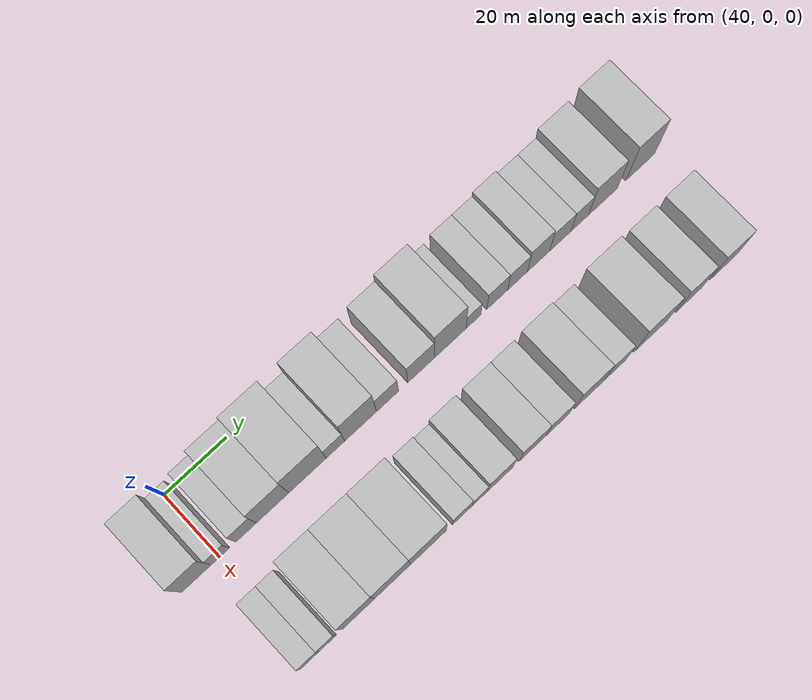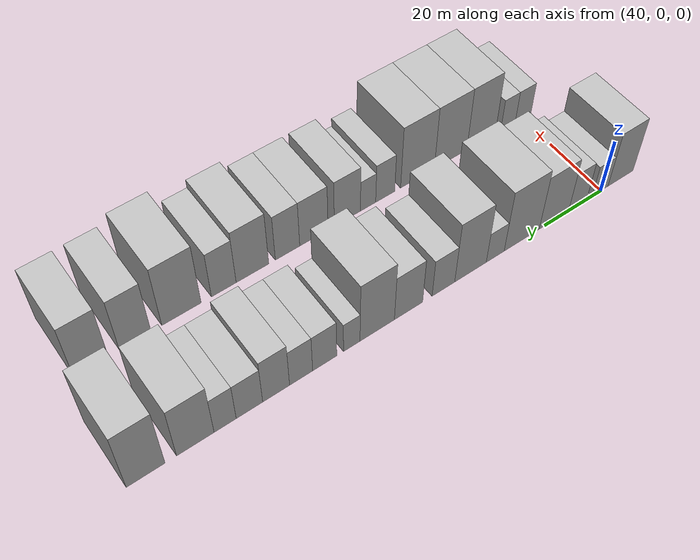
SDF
<sdf version="1.6">
 <world name="default">
  <model name="building_33">
   <static>1</static>
   <pose>50.0000 -7.2381 0 0.000000 0.000000 0.000000</pose>
   <link name="link">
    <pose>0 0 10.50 0 0 0</pose>
    <collision name="collision"><geometry><box><size>20.0000 9.2446 21.0000</size></box></geometry></collision>
    <visual name="visual">
     <cast_shadows>0</cast_shadows>
     <geometry><box><size>20.0000 9.2446 21.0000</size></box></geometry>
     <material>
      <script>
       <uri>model://HANNAS_wall/materials/scripts</uri>
       <uri>model://HANNAS_wall/materials/textures</uri>
       <name>vrc/HANNAS_wall</name>
      </script>
     </material>
    </visual>
   </link>
  </model>
  <model name="building_34">
   <static>1</static>
   <pose>50.0000 0.2510 0 0.000000 0.000000 0.000000</pose>
   <link name="link">
    <pose>0 0 6.00 0 0 0</pose>
    <collision name="collision"><geometry><box><size>20.0000 5.7335 12.0000</size></box></geometry></collision>
    <visual name="visual">
     <cast_shadows>0</cast_shadows>
     <geometry><box><size>20.0000 5.7335 12.0000</size></box></geometry>
     <material>
      <script>
       <uri>model://HANNAS_wall/materials/scripts</uri>
       <uri>model://HANNAS_wall/materials/textures</uri>
       <name>vrc/HANNAS_wall</name>
      </script>
     </material>
    </visual>
   </link>
  </model>
  <model name="building_35">
   <static>1</static>
   <pose>50.0000 8.3364 0 0.000000 0.000000 0.000000</pose>
   <link name="link">
    <pose>0 0 7.50 0 0 0</pose>
    <collision name="collision"><geometry><box><size>20.0000 6.4373 15.0000</size></box></geometry></collision>
    <visual name="visual">
     <cast_shadows>0</cast_shadows>
     <geometry><box><size>20.0000 6.4373 15.0000</size></box></geometry>
     <material>
      <script>
       <uri>model://HANNAS_wall/materials/scripts</uri>
       <uri>model://HANNAS_wall/materials/textures</uri>
       <name>vrc/HANNAS_wall</name>
      </script>
     </material>
    </visual>
   </link>
  </model>
  <model name="building_36">
   <static>1</static>
   <pose>50.0000 16.7058 0 0.000000 0.000000 0.000000</pose>
   <link name="link">
    <pose>0 0 10.50 0 0 0</pose>
    <collision name="collision"><geometry><box><size>20.0000 10.3015 21.0000</size></box></geometry></collision>
    <visual name="visual">
     <cast_shadows>0</cast_shadows>
     <geometry><box><size>20.0000 10.3015 21.0000</size></box></geometry>
     <material>
      <script>
       <uri>model://HANNAS_wall/materials/scripts</uri>
       <uri>model://HANNAS_wall/materials/textures</uri>
       <name>vrc/HANNAS_wall</name>
      </script>
     </material>
    </visual>
   </link>
  </model>
  <model name="building_37">
   <static>1</static>
   <pose>50.0000 27.8285 0 0.000000 0.000000 0.000000</pose>
   <link name="link">
    <pose>0 0 12.00 0 0 0</pose>
    <collision name="collision"><geometry><box><size>20.0000 11.9438 24.0000</size></box></geometry></collision>
    <visual name="visual">
     <cast_shadows>0</cast_shadows>
     <geometry><box><size>20.0000 11.9438 24.0000</size></box></geometry>
     <material>
      <script>
       <uri>model://HANNAS_wall/materials/scripts</uri>
       <uri>model://HANNAS_wall/materials/textures</uri>
       <name>vrc/HANNAS_wall</name>
      </script>
     </material>
    </visual>
   </link>
  </model>
  <model name="building_38">
   <static>1</static>
   <pose>50.0000 36.7897 0 0.000000 0.000000 0.000000</pose>
   <link name="link">
    <pose>0 0 6.00 0 0 0</pose>
    <collision name="collision"><geometry><box><size>20.0000 5.9785 12.0000</size></box></geometry></collision>
    <visual name="visual">
     <cast_shadows>0</cast_shadows>
     <geometry><box><size>20.0000 5.9785 12.0000</size></box></geometry>
     <material>
      <script>
       <uri>model://HANNAS_wall/materials/scripts</uri>
       <uri>model://HANNAS_wall/materials/textures</uri>
       <name>vrc/HANNAS_wall</name>
      </script>
     </material>
    </visual>
   </link>
  </model>
  <model name="building_39">
   <static>1</static>
   <pose>50.0000 44.9411 0 0.000000 0.000000 0.000000</pose>
   <link name="link">
    <pose>0 0 12.00 0 0 0</pose>
    <collision name="collision"><geometry><box><size>20.0000 10.3244 24.0000</size></box></geometry></collision>
    <visual name="visual">
     <cast_shadows>0</cast_shadows>
     <geometry><box><size>20.0000 10.3244 24.0000</size></box></geometry>
     <material>
      <script>
       <uri>model://HANNAS_wall/materials/scripts</uri>
       <uri>model://HANNAS_wall/materials/textures</uri>
       <name>vrc/HANNAS_wall</name>
      </script>
     </material>
    </visual>
   </link>
  </model>
  <model name="building_40">
   <static>1</static>
   <pose>50.0000 53.7202 0 0.000000 0.000000 0.000000</pose>
   <link name="link">
    <pose>0 0 7.50 0 0 0</pose>
    <collision name="collision"><geometry><box><size>20.0000 7.2339 15.0000</size></box></geometry></collision>
    <visual name="visual">
     <cast_shadows>0</cast_shadows>
     <geometry><box><size>20.0000 7.2339 15.0000</size></box></geometry>
     <material>
      <script>
       <uri>model://HANNAS_wall/materials/scripts</uri>
       <uri>model://HANNAS_wall/materials/textures</uri>
       <name>vrc/HANNAS_wall</name>
      </script>
     </material>
    </visual>
   </link>
  </model>
  <model name="building_41">
   <static>1</static>
   <pose>50.0000 64.7341 0 0.000000 0.000000 0.000000</pose>
   <link name="link">
    <pose>0 0 9.00 0 0 0</pose>
    <collision name="collision"><geometry><box><size>20.0000 8.7940 18.0000</size></box></geometry></collision>
    <visual name="visual">
     <cast_shadows>0</cast_shadows>
     <geometry><box><size>20.0000 8.7940 18.0000</size></box></geometry>
     <material>
      <script>
       <uri>model://HANNAS_wall/materials/scripts</uri>
       <uri>model://HANNAS_wall/materials/textures</uri>
       <name>vrc/HANNAS_wall</name>
      </script>
     </material>
    </visual>
   </link>
  </model>
  <model name="building_42">
   <static>1</static>
   <pose>50.0000 74.3640 0 0.000000 0.000000 0.000000</pose>
   <link name="link">
    <pose>0 0 12.00 0 0 0</pose>
    <collision name="collision"><geometry><box><size>20.0000 10.4658 24.0000</size></box></geometry></collision>
    <visual name="visual">
     <cast_shadows>0</cast_shadows>
     <geometry><box><size>20.0000 10.4658 24.0000</size></box></geometry>
     <material>
      <script>
       <uri>model://HANNAS_wall/materials/scripts</uri>
       <uri>model://HANNAS_wall/materials/textures</uri>
       <name>vrc/HANNAS_wall</name>
      </script>
     </material>
    </visual>
   </link>
  </model>
  <model name="building_43">
   <static>1</static>
   <pose>50.0000 82.0531 0 0.000000 0.000000 0.000000</pose>
   <link name="link">
    <pose>0 0 6.00 0 0 0</pose>
    <collision name="collision"><geometry><box><size>20.0000 4.9122 12.0000</size></box></geometry></collision>
    <visual name="visual">
     <cast_shadows>0</cast_shadows>
     <geometry><box><size>20.0000 4.9122 12.0000</size></box></geometry>
     <material>
      <script>
       <uri>model://HANNAS_wall/materials/scripts</uri>
       <uri>model://HANNAS_wall/materials/textures</uri>
       <name>vrc/HANNAS_wall</name>
      </script>
     </material>
    </visual>
   </link>
  </model>
  <model name="building_44">
   <static>1</static>
   <pose>50.0000 90.0316 0 0.000000 0.000000 0.000000</pose>
   <link name="link">
    <pose>0 0 7.50 0 0 0</pose>
    <collision name="collision"><geometry><box><size>20.0000 7.0448 15.0000</size></box></geometry></collision>
    <visual name="visual">
     <cast_shadows>0</cast_shadows>
     <geometry><box><size>20.0000 7.0448 15.0000</size></box></geometry>
     <material>
      <script>
       <uri>model://HANNAS_wall/materials/scripts</uri>
       <uri>model://HANNAS_wall/materials/textures</uri>
       <name>vrc/HANNAS_wall</name>
      </script>
     </material>
    </visual>
   </link>
  </model>
  <model name="building_45">
   <static>1</static>
   <pose>50.0000 96.8660 0 0.000000 0.000000 0.000000</pose>
   <link name="link">
    <pose>0 0 7.50 0 0 0</pose>
    <collision name="collision"><geometry><box><size>20.0000 6.6240 15.0000</size></box></geometry></collision>
    <visual name="visual">
     <cast_shadows>0</cast_shadows>
     <geometry><box><size>20.0000 6.6240 15.0000</size></box></geometry>
     <material>
      <script>
       <uri>model://HANNAS_wall/materials/scripts</uri>
       <uri>model://HANNAS_wall/materials/textures</uri>
       <name>vrc/HANNAS_wall</name>
      </script>
     </material>
    </visual>
   </link>
  </model>
  <model name="building_46">
   <static>1</static>
   <pose>50.0000 103.9636 0 0.000000 0.000000 0.000000</pose>
   <link name="link">
    <pose>0 0 9.00 0 0 0</pose>
    <collision name="collision"><geometry><box><size>20.0000 7.5711 18.0000</size></box></geometry></collision>
    <visual name="visual">
     <cast_shadows>0</cast_shadows>
     <geometry><box><size>20.0000 7.5711 18.0000</size></box></geometry>
     <material>
      <script>
       <uri>model://HANNAS_wall/materials/scripts</uri>
       <uri>model://HANNAS_wall/materials/textures</uri>
       <name>vrc/HANNAS_wall</name>
      </script>
     </material>
    </visual>
   </link>
  </model>
  <model name="building_47">
   <static>1</static>
   <pose>50.0000 111.4161 0 0.000000 0.000000 0.000000</pose>
   <link name="link">
    <pose>0 0 7.50 0 0 0</pose>
    <collision name="collision"><geometry><box><size>20.0000 7.3340 15.0000</size></box></geometry></collision>
    <visual name="visual">
     <cast_shadows>0</cast_shadows>
     <geometry><box><size>20.0000 7.3340 15.0000</size></box></geometry>
     <material>
      <script>
       <uri>model://HANNAS_wall/materials/scripts</uri>
       <uri>model://HANNAS_wall/materials/textures</uri>
       <name>vrc/HANNAS_wall</name>
      </script>
     </material>
    </visual>
   </link>
  </model>
  <model name="building_48">
   <static>1</static>
   <pose>50.0000 118.0838 0 0.000000 0.000000 0.000000</pose>
   <link name="link">
    <pose>0 0 7.50 0 0 0</pose>
    <collision name="collision"><geometry><box><size>20.0000 6.0014 15.0000</size></box></geometry></collision>
    <visual name="visual">
     <cast_shadows>0</cast_shadows>
     <geometry><box><size>20.0000 6.0014 15.0000</size></box></geometry>
     <material>
      <script>
       <uri>model://HANNAS_wall/materials/scripts</uri>
       <uri>model://HANNAS_wall/materials/textures</uri>
       <name>vrc/HANNAS_wall</name>
      </script>
     </material>
    </visual>
   </link>
  </model>
  <model name="building_49">
   <static>1</static>
   <pose>50.0000 126.0789 0 0.000000 0.000000 0.000000</pose>
   <link name="link">
    <pose>0 0 10.50 0 0 0</pose>
    <collision name="collision"><geometry><box><size>20.0000 9.9887 21.0000</size></box></geometry></collision>
    <visual name="visual">
     <cast_shadows>0</cast_shadows>
     <geometry><box><size>20.0000 9.9887 21.0000</size></box></geometry>
     <material>
      <script>
       <uri>model://HANNAS_wall/materials/scripts</uri>
       <uri>model://HANNAS_wall/materials/textures</uri>
       <name>vrc/HANNAS_wall</name>
      </script>
     </material>
    </visual>
   </link>
  </model>
  <model name="building_50">
   <static>1</static>
   <pose>50.0000 139.0721 0 0.000000 0.000000 0.000000</pose>
   <link name="link">
    <pose>0 0 12.00 0 0 0</pose>
    <collision name="collision"><geometry><box><size>20.0000 9.9978 24.0000</size></box></geometry></collision>
    <visual name="visual">
     <cast_shadows>0</cast_shadows>
     <geometry><box><size>20.0000 9.9978 24.0000</size></box></geometry>
     <material>
      <script>
       <uri>model://HANNAS_wall/materials/scripts</uri>
       <uri>model://HANNAS_wall/materials/textures</uri>
       <name>vrc/HANNAS_wall</name>
      </script>
     </material>
    </visual>
   </link>
  </model>
  <model name="building_101">
   <static>1</static>
   <pose>82.0000 -0.4749 0 0.000000 0.000000 0.000000</pose>
   <link name="link">
    <pose>0 0 6.00 0 0 0</pose>
    <collision name="collision"><geometry><box><size>20.0000 5.8154 12.0000</size></box></geometry></collision>
    <visual name="visual">
     <cast_shadows>0</cast_shadows>
     <geometry><box><size>20.0000 5.8154 12.0000</size></box></geometry>
     <material>
      <script>
       <uri>model://HANNAS_wall/materials/scripts</uri>
       <uri>model://HANNAS_wall/materials/textures</uri>
       <name>vrc/HANNAS_wall</name>
      </script>
     </material>
    </visual>
   </link>
  </model>
  <model name="building_102">
   <static>1</static>
   <pose>82.0000 5.0881 0 0.000000 0.000000 0.000000</pose>
   <link name="link">
    <pose>0 0 6.00 0 0 0</pose>
    <collision name="collision"><geometry><box><size>20.0000 5.3107 12.0000</size></box></geometry></collision>
    <visual name="visual">
     <cast_shadows>0</cast_shadows>
     <geometry><box><size>20.0000 5.3107 12.0000</size></box></geometry>
     <material>
      <script>
       <uri>model://HANNAS_wall/materials/scripts</uri>
       <uri>model://HANNAS_wall/materials/textures</uri>
       <name>vrc/HANNAS_wall</name>
      </script>
     </material>
    </visual>
   </link>
  </model>
  <model name="building_103">
   <static>1</static>
   <pose>82.0000 14.8344 0 0.000000 0.000000 0.000000</pose>
   <link name="link">
    <pose>0 0 12.00 0 0 0</pose>
    <collision name="collision"><geometry><box><size>20.0000 10.1818 24.0000</size></box></geometry></collision>
    <visual name="visual">
     <cast_shadows>0</cast_shadows>
     <geometry><box><size>20.0000 10.1818 24.0000</size></box></geometry>
     <material>
      <script>
       <uri>model://HANNAS_wall/materials/scripts</uri>
       <uri>model://HANNAS_wall/materials/textures</uri>
       <name>vrc/HANNAS_wall</name>
      </script>
     </material>
    </visual>
   </link>
  </model>
  <model name="building_104">
   <static>1</static>
   <pose>82.0000 25.6174 0 0.000000 0.000000 0.000000</pose>
   <link name="link">
    <pose>0 0 12.00 0 0 0</pose>
    <collision name="collision"><geometry><box><size>20.0000 11.3843 24.0000</size></box></geometry></collision>
    <visual name="visual">
     <cast_shadows>0</cast_shadows>
     <geometry><box><size>20.0000 11.3843 24.0000</size></box></geometry>
     <material>
      <script>
       <uri>model://HANNAS_wall/materials/scripts</uri>
       <uri>model://HANNAS_wall/materials/textures</uri>
       <name>vrc/HANNAS_wall</name>
      </script>
     </material>
    </visual>
   </link>
  </model>
  <model name="building_105">
   <static>1</static>
   <pose>82.0000 37.0553 0 0.000000 0.000000 0.000000</pose>
   <link name="link">
    <pose>0 0 12.00 0 0 0</pose>
    <collision name="collision"><geometry><box><size>20.0000 11.4916 24.0000</size></box></geometry></collision>
    <visual name="visual">
     <cast_shadows>0</cast_shadows>
     <geometry><box><size>20.0000 11.4916 24.0000</size></box></geometry>
     <material>
      <script>
       <uri>model://HANNAS_wall/materials/scripts</uri>
       <uri>model://HANNAS_wall/materials/textures</uri>
       <name>vrc/HANNAS_wall</name>
      </script>
     </material>
    </visual>
   </link>
  </model>
  <model name="building_106">
   <static>1</static>
   <pose>82.0000 47.9563 0 0.000000 0.000000 0.000000</pose>
   <link name="link">
    <pose>0 0 7.50 0 0 0</pose>
    <collision name="collision"><geometry><box><size>20.0000 6.3104 15.0000</size></box></geometry></collision>
    <visual name="visual">
     <cast_shadows>0</cast_shadows>
     <geometry><box><size>20.0000 6.3104 15.0000</size></box></geometry>
     <material>
      <script>
       <uri>model://HANNAS_wall/materials/scripts</uri>
       <uri>model://HANNAS_wall/materials/textures</uri>
       <name>vrc/HANNAS_wall</name>
      </script>
     </material>
    </visual>
   </link>
  </model>
  <model name="building_107">
   <static>1</static>
   <pose>82.0000 53.6147 0 0.000000 0.000000 0.000000</pose>
   <link name="link">
    <pose>0 0 6.00 0 0 0</pose>
    <collision name="collision"><geometry><box><size>20.0000 5.0064 12.0000</size></box></geometry></collision>
    <visual name="visual">
     <cast_shadows>0</cast_shadows>
     <geometry><box><size>20.0000 5.0064 12.0000</size></box></geometry>
     <material>
      <script>
       <uri>model://HANNAS_wall/materials/scripts</uri>
       <uri>model://HANNAS_wall/materials/textures</uri>
       <name>vrc/HANNAS_wall</name>
      </script>
     </material>
    </visual>
   </link>
  </model>
  <model name="building_108">
   <static>1</static>
   <pose>82.0000 60.3227 0 0.000000 0.000000 0.000000</pose>
   <link name="link">
    <pose>0 0 9.00 0 0 0</pose>
    <collision name="collision"><geometry><box><size>20.0000 8.4095 18.0000</size></box></geometry></collision>
    <visual name="visual">
     <cast_shadows>0</cast_shadows>
     <geometry><box><size>20.0000 8.4095 18.0000</size></box></geometry>
     <material>
      <script>
       <uri>model://HANNAS_wall/materials/scripts</uri>
       <uri>model://HANNAS_wall/materials/textures</uri>
       <name>vrc/HANNAS_wall</name>
      </script>
     </material>
    </visual>
   </link>
  </model>
  <model name="building_109">
   <static>1</static>
   <pose>82.0000 70.9838 0 0.000000 0.000000 0.000000</pose>
   <link name="link">
    <pose>0 0 9.00 0 0 0</pose>
    <collision name="collision"><geometry><box><size>20.0000 8.9127 18.0000</size></box></geometry></collision>
    <visual name="visual">
     <cast_shadows>0</cast_shadows>
     <geometry><box><size>20.0000 8.9127 18.0000</size></box></geometry>
     <material>
      <script>
       <uri>model://HANNAS_wall/materials/scripts</uri>
       <uri>model://HANNAS_wall/materials/textures</uri>
       <name>vrc/HANNAS_wall</name>
      </script>
     </material>
    </visual>
   </link>
  </model>
  <model name="building_110">
   <static>1</static>
   <pose>82.0000 79.2078 0 0.000000 0.000000 0.000000</pose>
   <link name="link">
    <pose>0 0 9.00 0 0 0</pose>
    <collision name="collision"><geometry><box><size>20.0000 7.5354 18.0000</size></box></geometry></collision>
    <visual name="visual">
     <cast_shadows>0</cast_shadows>
     <geometry><box><size>20.0000 7.5354 18.0000</size></box></geometry>
     <material>
      <script>
       <uri>model://HANNAS_wall/materials/scripts</uri>
       <uri>model://HANNAS_wall/materials/textures</uri>
       <name>vrc/HANNAS_wall</name>
      </script>
     </material>
    </visual>
   </link>
  </model>
  <model name="building_111">
   <static>1</static>
   <pose>82.0000 89.8831 0 0.000000 0.000000 0.000000</pose>
   <link name="link">
    <pose>0 0 10.50 0 0 0</pose>
    <collision name="collision"><geometry><box><size>20.0000 9.8151 21.0000</size></box></geometry></collision>
    <visual name="visual">
     <cast_shadows>0</cast_shadows>
     <geometry><box><size>20.0000 9.8151 21.0000</size></box></geometry>
     <material>
      <script>
       <uri>model://HANNAS_wall/materials/scripts</uri>
       <uri>model://HANNAS_wall/materials/textures</uri>
       <name>vrc/HANNAS_wall</name>
      </script>
     </material>
    </visual>
   </link>
  </model>
  <model name="building_112">
   <static>1</static>
   <pose>82.0000 98.4345 0 0.000000 0.000000 0.000000</pose>
   <link name="link">
    <pose>0 0 9.00 0 0 0</pose>
    <collision name="collision"><geometry><box><size>20.0000 7.2878 18.0000</size></box></geometry></collision>
    <visual name="visual">
     <cast_shadows>0</cast_shadows>
     <geometry><box><size>20.0000 7.2878 18.0000</size></box></geometry>
     <material>
      <script>
       <uri>model://HANNAS_wall/materials/scripts</uri>
       <uri>model://HANNAS_wall/materials/textures</uri>
       <name>vrc/HANNAS_wall</name>
      </script>
     </material>
    </visual>
   </link>
  </model>
  <model name="building_113">
   <static>1</static>
   <pose>82.0000 110.7054 0 0.000000 0.000000 0.000000</pose>
   <link name="link">
    <pose>0 0 12.00 0 0 0</pose>
    <collision name="collision"><geometry><box><size>20.0000 11.2538 24.0000</size></box></geometry></collision>
    <visual name="visual">
     <cast_shadows>0</cast_shadows>
     <geometry><box><size>20.0000 11.2538 24.0000</size></box></geometry>
     <material>
      <script>
       <uri>model://HANNAS_wall/materials/scripts</uri>
       <uri>model://HANNAS_wall/materials/textures</uri>
       <name>vrc/HANNAS_wall</name>
      </script>
     </material>
    </visual>
   </link>
  </model>
  <model name="building_114">
   <static>1</static>
   <pose>82.0000 123.7329 0 0.000000 0.000000 0.000000</pose>
   <link name="link">
    <pose>0 0 10.50 0 0 0</pose>
    <collision name="collision"><geometry><box><size>20.0000 8.8012 21.0000</size></box></geometry></collision>
    <visual name="visual">
     <cast_shadows>0</cast_shadows>
     <geometry><box><size>20.0000 8.8012 21.0000</size></box></geometry>
     <material>
      <script>
       <uri>model://HANNAS_wall/materials/scripts</uri>
       <uri>model://HANNAS_wall/materials/textures</uri>
       <name>vrc/HANNAS_wall</name>
      </script>
     </material>
    </visual>
   </link>
  </model>
  <model name="building_115">
   <static>1</static>
   <pose>82.0000 135.8310 0 0.000000 0.000000 0.000000</pose>
   <link name="link">
    <pose>0 0 10.50 0 0 0</pose>
    <collision name="collision"><geometry><box><size>20.0000 9.3950 21.0000</size></box></geometry></collision>
    <visual name="visual">
     <cast_shadows>0</cast_shadows>
     <geometry><box><size>20.0000 9.3950 21.0000</size></box></geometry>
     <material>
      <script>
       <uri>model://HANNAS_wall/materials/scripts</uri>
       <uri>model://HANNAS_wall/materials/textures</uri>
       <name>vrc/HANNAS_wall</name>
      </script>
     </material>
    </visual>
   </link>
  </model>
 </world>
</sdf>
